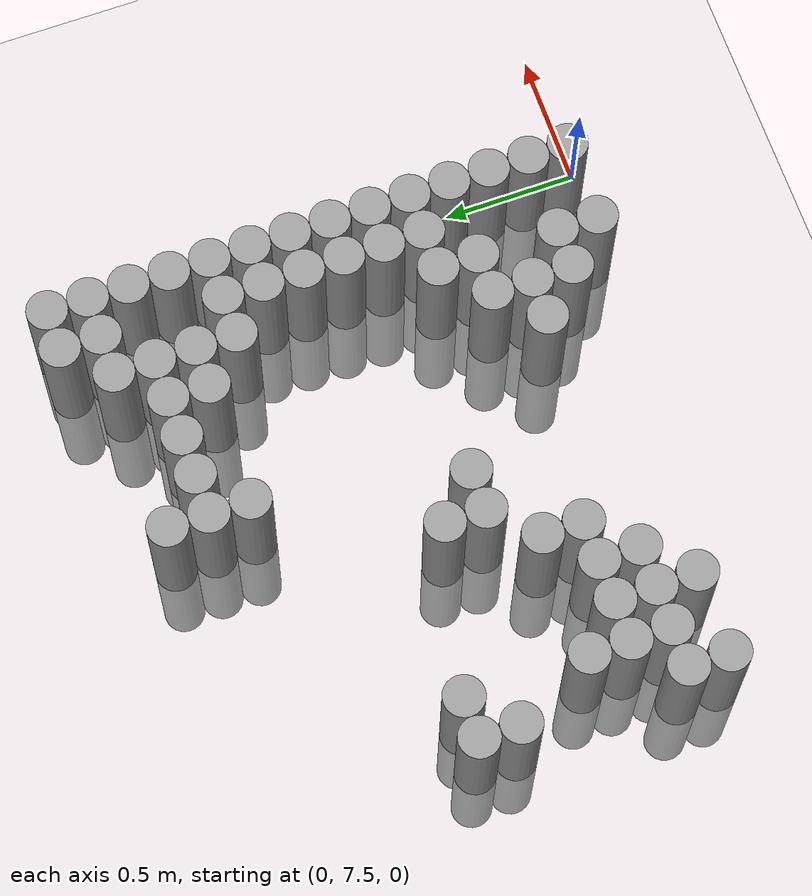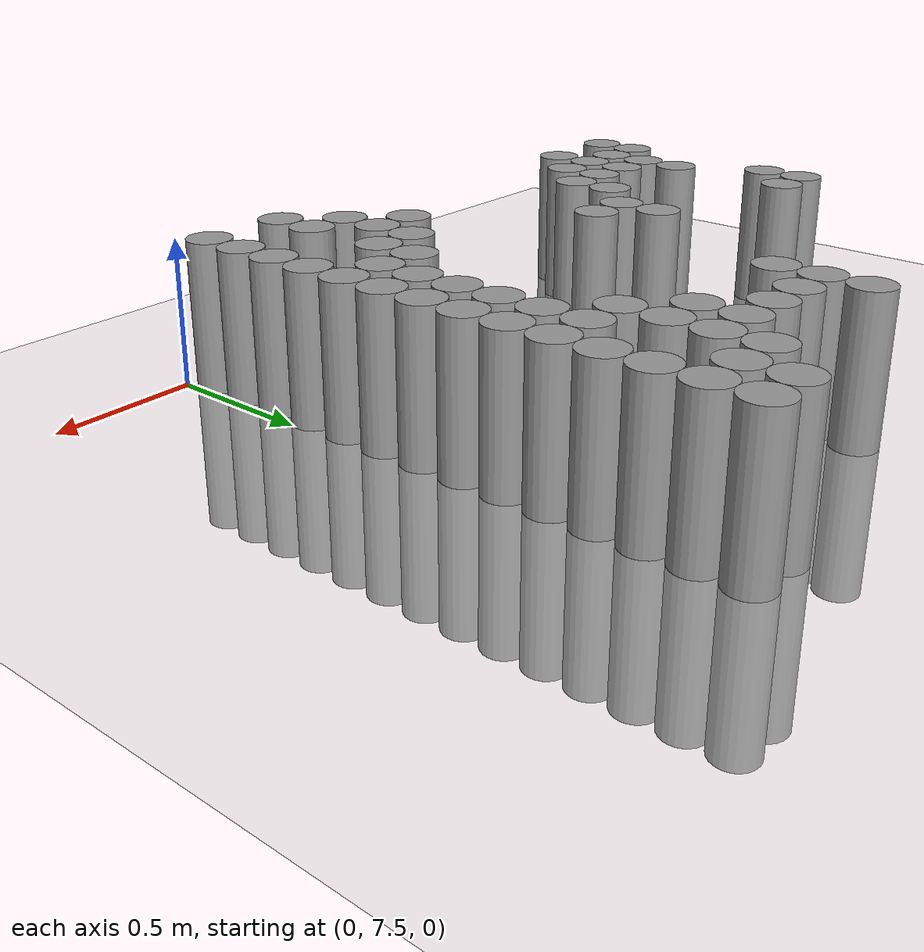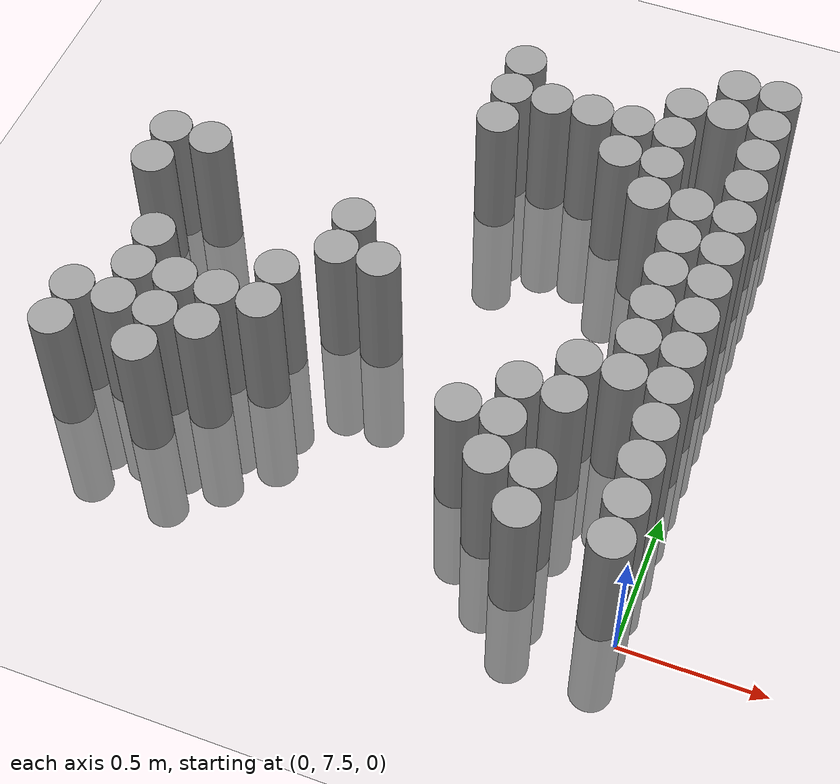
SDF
<sdf version="1.6">
 <world name="default">
  <model name="ground_plane">
   <static>1</static>
   <static>1</static>
   <link name="link">
    <collision name="collision">
     <geometry><plane><normal>0 0 1</normal><size>100 100</size></plane></geometry>
     <surface><friction><ode><mu>100</mu><mu2>50</mu2></ode></friction></surface>
    </collision>
    <visual name="visual">
     <cast_shadows>0</cast_shadows>
     <geometry><plane><normal>0 0 1</normal><size>100 100</size></plane></geometry>
     <material>
      <script><uri>file://media/materials/scripts/gazebo.material</uri><name>Gazebo/Grey</name></script>
     </material>
    </visual>
   </link>
  </model>
  <model name="unit_cylinder_177">
   <static>1</static>
   <pose>-2.025000 7.725000 0.000000 0.000000 0.000000 0.000000</pose>
   <link name="link">
    <inertial>
     <mass>1</mass>
     <inertia><ixx>0.145833</ixx><ixy>0</ixy><ixz>0</ixz><iyy>0.145833</iyy><iyz>0</iyz><izz>0.125</izz></inertia>
    </inertial>
    <collision name="collision">
     <geometry><cylinder><radius>0.075000</radius><length>1</length></cylinder></geometry>
    </collision>
    <visual name="visual">
     <geometry><cylinder><radius>0.075000</radius><length>1</length></cylinder></geometry>
     <material>
      <script><name>Gazebo/Grey</name><uri>file://media/materials/scripts/gazebo.material</uri></script>
     </material>
    </visual>
   </link>
  </model>
  <model name="unit_cylinder_178">
   <static>1</static>
   <pose>-2.025000 7.875000 0.000000 0.000000 0.000000 0.000000</pose>
   <link name="link">
    <inertial>
     <mass>1</mass>
     <inertia><ixx>0.145833</ixx><ixy>0</ixy><ixz>0</ixz><iyy>0.145833</iyy><iyz>0</iyz><izz>0.125</izz></inertia>
    </inertial>
    <collision name="collision">
     <geometry><cylinder><radius>0.075000</radius><length>1</length></cylinder></geometry>
    </collision>
    <visual name="visual">
     <geometry><cylinder><radius>0.075000</radius><length>1</length></cylinder></geometry>
     <material>
      <script><name>Gazebo/Grey</name><uri>file://media/materials/scripts/gazebo.material</uri></script>
     </material>
    </visual>
   </link>
  </model>
  <model name="unit_cylinder_179">
   <static>1</static>
   <pose>-2.025000 8.475000 0.000000 0.000000 0.000000 0.000000</pose>
   <link name="link">
    <inertial>
     <mass>1</mass>
     <inertia><ixx>0.145833</ixx><ixy>0</ixy><ixz>0</ixz><iyy>0.145833</iyy><iyz>0</iyz><izz>0.125</izz></inertia>
    </inertial>
    <collision name="collision">
     <geometry><cylinder><radius>0.075000</radius><length>1</length></cylinder></geometry>
    </collision>
    <visual name="visual">
     <geometry><cylinder><radius>0.075000</radius><length>1</length></cylinder></geometry>
     <material>
      <script><name>Gazebo/Grey</name><uri>file://media/materials/scripts/gazebo.material</uri></script>
     </material>
    </visual>
   </link>
  </model>
  <model name="unit_cylinder_180">
   <static>1</static>
   <pose>-2.025000 8.625000 0.000000 0.000000 0.000000 0.000000</pose>
   <link name="link">
    <inertial>
     <mass>1</mass>
     <inertia><ixx>0.145833</ixx><ixy>0</ixy><ixz>0</ixz><iyy>0.145833</iyy><iyz>0</iyz><izz>0.125</izz></inertia>
    </inertial>
    <collision name="collision">
     <geometry><cylinder><radius>0.075000</radius><length>1</length></cylinder></geometry>
    </collision>
    <visual name="visual">
     <geometry><cylinder><radius>0.075000</radius><length>1</length></cylinder></geometry>
     <material>
      <script><name>Gazebo/Grey</name><uri>file://media/materials/scripts/gazebo.material</uri></script>
     </material>
    </visual>
   </link>
  </model>
  <model name="unit_cylinder_183">
   <static>1</static>
   <pose>-1.875000 7.875000 0.000000 0.000000 0.000000 0.000000</pose>
   <link name="link">
    <inertial>
     <mass>1</mass>
     <inertia><ixx>0.145833</ixx><ixy>0</ixy><ixz>0</ixz><iyy>0.145833</iyy><iyz>0</iyz><izz>0.125</izz></inertia>
    </inertial>
    <collision name="collision">
     <geometry><cylinder><radius>0.075000</radius><length>1</length></cylinder></geometry>
    </collision>
    <visual name="visual">
     <geometry><cylinder><radius>0.075000</radius><length>1</length></cylinder></geometry>
     <material>
      <script><name>Gazebo/Grey</name><uri>file://media/materials/scripts/gazebo.material</uri></script>
     </material>
    </visual>
   </link>
  </model>
  <model name="unit_cylinder_184">
   <static>1</static>
   <pose>-1.875000 8.025000 0.000000 0.000000 0.000000 0.000000</pose>
   <link name="link">
    <inertial>
     <mass>1</mass>
     <inertia><ixx>0.145833</ixx><ixy>0</ixy><ixz>0</ixz><iyy>0.145833</iyy><iyz>0</iyz><izz>0.125</izz></inertia>
    </inertial>
    <collision name="collision">
     <geometry><cylinder><radius>0.075000</radius><length>1</length></cylinder></geometry>
    </collision>
    <visual name="visual">
     <geometry><cylinder><radius>0.075000</radius><length>1</length></cylinder></geometry>
     <material>
      <script><name>Gazebo/Grey</name><uri>file://media/materials/scripts/gazebo.material</uri></script>
     </material>
    </visual>
   </link>
  </model>
  <model name="unit_cylinder_185">
   <static>1</static>
   <pose>-1.875000 8.175000 0.000000 0.000000 0.000000 0.000000</pose>
   <link name="link">
    <inertial>
     <mass>1</mass>
     <inertia><ixx>0.145833</ixx><ixy>0</ixy><ixz>0</ixz><iyy>0.145833</iyy><iyz>0</iyz><izz>0.125</izz></inertia>
    </inertial>
    <collision name="collision">
     <geometry><cylinder><radius>0.075000</radius><length>1</length></cylinder></geometry>
    </collision>
    <visual name="visual">
     <geometry><cylinder><radius>0.075000</radius><length>1</length></cylinder></geometry>
     <material>
      <script><name>Gazebo/Grey</name><uri>file://media/materials/scripts/gazebo.material</uri></script>
     </material>
    </visual>
   </link>
  </model>
  <model name="unit_cylinder_186">
   <static>1</static>
   <pose>-1.875000 8.625000 0.000000 0.000000 0.000000 0.000000</pose>
   <link name="link">
    <inertial>
     <mass>1</mass>
     <inertia><ixx>0.145833</ixx><ixy>0</ixy><ixz>0</ixz><iyy>0.145833</iyy><iyz>0</iyz><izz>0.125</izz></inertia>
    </inertial>
    <collision name="collision">
     <geometry><cylinder><radius>0.075000</radius><length>1</length></cylinder></geometry>
    </collision>
    <visual name="visual">
     <geometry><cylinder><radius>0.075000</radius><length>1</length></cylinder></geometry>
     <material>
      <script><name>Gazebo/Grey</name><uri>file://media/materials/scripts/gazebo.material</uri></script>
     </material>
    </visual>
   </link>
  </model>
  <model name="unit_cylinder_195">
   <static>1</static>
   <pose>-1.725000 7.725000 0.000000 0.000000 0.000000 0.000000</pose>
   <link name="link">
    <inertial>
     <mass>1</mass>
     <inertia><ixx>0.145833</ixx><ixy>0</ixy><ixz>0</ixz><iyy>0.145833</iyy><iyz>0</iyz><izz>0.125</izz></inertia>
    </inertial>
    <collision name="collision">
     <geometry><cylinder><radius>0.075000</radius><length>1</length></cylinder></geometry>
    </collision>
    <visual name="visual">
     <geometry><cylinder><radius>0.075000</radius><length>1</length></cylinder></geometry>
     <material>
      <script><name>Gazebo/Grey</name><uri>file://media/materials/scripts/gazebo.material</uri></script>
     </material>
    </visual>
   </link>
  </model>
  <model name="unit_cylinder_196">
   <static>1</static>
   <pose>-1.725000 7.875000 0.000000 0.000000 0.000000 0.000000</pose>
   <link name="link">
    <inertial>
     <mass>1</mass>
     <inertia><ixx>0.145833</ixx><ixy>0</ixy><ixz>0</ixz><iyy>0.145833</iyy><iyz>0</iyz><izz>0.125</izz></inertia>
    </inertial>
    <collision name="collision">
     <geometry><cylinder><radius>0.075000</radius><length>1</length></cylinder></geometry>
    </collision>
    <visual name="visual">
     <geometry><cylinder><radius>0.075000</radius><length>1</length></cylinder></geometry>
     <material>
      <script><name>Gazebo/Grey</name><uri>file://media/materials/scripts/gazebo.material</uri></script>
     </material>
    </visual>
   </link>
  </model>
  <model name="unit_cylinder_197">
   <static>1</static>
   <pose>-1.725000 8.025000 0.000000 0.000000 0.000000 0.000000</pose>
   <link name="link">
    <inertial>
     <mass>1</mass>
     <inertia><ixx>0.145833</ixx><ixy>0</ixy><ixz>0</ixz><iyy>0.145833</iyy><iyz>0</iyz><izz>0.125</izz></inertia>
    </inertial>
    <collision name="collision">
     <geometry><cylinder><radius>0.075000</radius><length>1</length></cylinder></geometry>
    </collision>
    <visual name="visual">
     <geometry><cylinder><radius>0.075000</radius><length>1</length></cylinder></geometry>
     <material>
      <script><name>Gazebo/Grey</name><uri>file://media/materials/scripts/gazebo.material</uri></script>
     </material>
    </visual>
   </link>
  </model>
  <model name="unit_cylinder_204">
   <static>1</static>
   <pose>-1.575000 7.875000 0.000000 0.000000 0.000000 0.000000</pose>
   <link name="link">
    <inertial>
     <mass>1</mass>
     <inertia><ixx>0.145833</ixx><ixy>0</ixy><ixz>0</ixz><iyy>0.145833</iyy><iyz>0</iyz><izz>0.125</izz></inertia>
    </inertial>
    <collision name="collision">
     <geometry><cylinder><radius>0.075000</radius><length>1</length></cylinder></geometry>
    </collision>
    <visual name="visual">
     <geometry><cylinder><radius>0.075000</radius><length>1</length></cylinder></geometry>
     <material>
      <script><name>Gazebo/Grey</name><uri>file://media/materials/scripts/gazebo.material</uri></script>
     </material>
    </visual>
   </link>
  </model>
  <model name="unit_cylinder_205">
   <static>1</static>
   <pose>-1.575000 8.025000 0.000000 0.000000 0.000000 0.000000</pose>
   <link name="link">
    <inertial>
     <mass>1</mass>
     <inertia><ixx>0.145833</ixx><ixy>0</ixy><ixz>0</ixz><iyy>0.145833</iyy><iyz>0</iyz><izz>0.125</izz></inertia>
    </inertial>
    <collision name="collision">
     <geometry><cylinder><radius>0.075000</radius><length>1</length></cylinder></geometry>
    </collision>
    <visual name="visual">
     <geometry><cylinder><radius>0.075000</radius><length>1</length></cylinder></geometry>
     <material>
      <script><name>Gazebo/Grey</name><uri>file://media/materials/scripts/gazebo.material</uri></script>
     </material>
    </visual>
   </link>
  </model>
  <model name="unit_cylinder_208">
   <static>1</static>
   <pose>-1.425000 8.025000 0.000000 0.000000 0.000000 0.000000</pose>
   <link name="link">
    <inertial>
     <mass>1</mass>
     <inertia><ixx>0.145833</ixx><ixy>0</ixy><ixz>0</ixz><iyy>0.145833</iyy><iyz>0</iyz><izz>0.125</izz></inertia>
    </inertial>
    <collision name="collision">
     <geometry><cylinder><radius>0.075000</radius><length>1</length></cylinder></geometry>
    </collision>
    <visual name="visual">
     <geometry><cylinder><radius>0.075000</radius><length>1</length></cylinder></geometry>
     <material>
      <script><name>Gazebo/Grey</name><uri>file://media/materials/scripts/gazebo.material</uri></script>
     </material>
    </visual>
   </link>
  </model>
  <model name="unit_cylinder_209">
   <static>1</static>
   <pose>-1.425000 8.175000 0.000000 0.000000 0.000000 0.000000</pose>
   <link name="link">
    <inertial>
     <mass>1</mass>
     <inertia><ixx>0.145833</ixx><ixy>0</ixy><ixz>0</ixz><iyy>0.145833</iyy><iyz>0</iyz><izz>0.125</izz></inertia>
    </inertial>
    <collision name="collision">
     <geometry><cylinder><radius>0.075000</radius><length>1</length></cylinder></geometry>
    </collision>
    <visual name="visual">
     <geometry><cylinder><radius>0.075000</radius><length>1</length></cylinder></geometry>
     <material>
      <script><name>Gazebo/Grey</name><uri>file://media/materials/scripts/gazebo.material</uri></script>
     </material>
    </visual>
   </link>
  </model>
  <model name="unit_cylinder_211">
   <static>1</static>
   <pose>-1.275000 8.325000 0.000000 0.000000 0.000000 0.000000</pose>
   <link name="link">
    <inertial>
     <mass>1</mass>
     <inertia><ixx>0.145833</ixx><ixy>0</ixy><ixz>0</ixz><iyy>0.145833</iyy><iyz>0</iyz><izz>0.125</izz></inertia>
    </inertial>
    <collision name="collision">
     <geometry><cylinder><radius>0.075000</radius><length>1</length></cylinder></geometry>
    </collision>
    <visual name="visual">
     <geometry><cylinder><radius>0.075000</radius><length>1</length></cylinder></geometry>
     <material>
      <script><name>Gazebo/Grey</name><uri>file://media/materials/scripts/gazebo.material</uri></script>
     </material>
    </visual>
   </link>
  </model>
  <model name="unit_cylinder_212">
   <static>1</static>
   <pose>-1.275000 8.475000 0.000000 0.000000 0.000000 0.000000</pose>
   <link name="link">
    <inertial>
     <mass>1</mass>
     <inertia><ixx>0.145833</ixx><ixy>0</ixy><ixz>0</ixz><iyy>0.145833</iyy><iyz>0</iyz><izz>0.125</izz></inertia>
    </inertial>
    <collision name="collision">
     <geometry><cylinder><radius>0.075000</radius><length>1</length></cylinder></geometry>
    </collision>
    <visual name="visual">
     <geometry><cylinder><radius>0.075000</radius><length>1</length></cylinder></geometry>
     <material>
      <script><name>Gazebo/Grey</name><uri>file://media/materials/scripts/gazebo.material</uri></script>
     </material>
    </visual>
   </link>
  </model>
  <model name="unit_cylinder_214">
   <static>1</static>
   <pose>-1.125000 8.325000 0.000000 0.000000 0.000000 0.000000</pose>
   <link name="link">
    <inertial>
     <mass>1</mass>
     <inertia><ixx>0.145833</ixx><ixy>0</ixy><ixz>0</ixz><iyy>0.145833</iyy><iyz>0</iyz><izz>0.125</izz></inertia>
    </inertial>
    <collision name="collision">
     <geometry><cylinder><radius>0.075000</radius><length>1</length></cylinder></geometry>
    </collision>
    <visual name="visual">
     <geometry><cylinder><radius>0.075000</radius><length>1</length></cylinder></geometry>
     <material>
      <script><name>Gazebo/Grey</name><uri>file://media/materials/scripts/gazebo.material</uri></script>
     </material>
    </visual>
   </link>
  </model>
  <model name="unit_cylinder_217">
   <static>1</static>
   <pose>-0.975000 9.075000 0.000000 0.000000 0.000000 0.000000</pose>
   <link name="link">
    <inertial>
     <mass>1</mass>
     <inertia><ixx>0.145833</ixx><ixy>0</ixy><ixz>0</ixz><iyy>0.145833</iyy><iyz>0</iyz><izz>0.125</izz></inertia>
    </inertial>
    <collision name="collision">
     <geometry><cylinder><radius>0.075000</radius><length>1</length></cylinder></geometry>
    </collision>
    <visual name="visual">
     <geometry><cylinder><radius>0.075000</radius><length>1</length></cylinder></geometry>
     <material>
      <script><name>Gazebo/Grey</name><uri>file://media/materials/scripts/gazebo.material</uri></script>
     </material>
    </visual>
   </link>
  </model>
  <model name="unit_cylinder_218">
   <static>1</static>
   <pose>-0.975000 9.225000 0.000000 0.000000 0.000000 0.000000</pose>
   <link name="link">
    <inertial>
     <mass>1</mass>
     <inertia><ixx>0.145833</ixx><ixy>0</ixy><ixz>0</ixz><iyy>0.145833</iyy><iyz>0</iyz><izz>0.125</izz></inertia>
    </inertial>
    <collision name="collision">
     <geometry><cylinder><radius>0.075000</radius><length>1</length></cylinder></geometry>
    </collision>
    <visual name="visual">
     <geometry><cylinder><radius>0.075000</radius><length>1</length></cylinder></geometry>
     <material>
      <script><name>Gazebo/Grey</name><uri>file://media/materials/scripts/gazebo.material</uri></script>
     </material>
    </visual>
   </link>
  </model>
  <model name="unit_cylinder_219">
   <static>1</static>
   <pose>-0.975000 9.375000 0.000000 0.000000 0.000000 0.000000</pose>
   <link name="link">
    <inertial>
     <mass>1</mass>
     <inertia><ixx>0.145833</ixx><ixy>0</ixy><ixz>0</ixz><iyy>0.145833</iyy><iyz>0</iyz><izz>0.125</izz></inertia>
    </inertial>
    <collision name="collision">
     <geometry><cylinder><radius>0.075000</radius><length>1</length></cylinder></geometry>
    </collision>
    <visual name="visual">
     <geometry><cylinder><radius>0.075000</radius><length>1</length></cylinder></geometry>
     <material>
      <script><name>Gazebo/Grey</name><uri>file://media/materials/scripts/gazebo.material</uri></script>
     </material>
    </visual>
   </link>
  </model>
  <model name="unit_cylinder_220">
   <static>1</static>
   <pose>-0.825000 9.225000 0.000000 0.000000 0.000000 0.000000</pose>
   <link name="link">
    <inertial>
     <mass>1</mass>
     <inertia><ixx>0.145833</ixx><ixy>0</ixy><ixz>0</ixz><iyy>0.145833</iyy><iyz>0</iyz><izz>0.125</izz></inertia>
    </inertial>
    <collision name="collision">
     <geometry><cylinder><radius>0.075000</radius><length>1</length></cylinder></geometry>
    </collision>
    <visual name="visual">
     <geometry><cylinder><radius>0.075000</radius><length>1</length></cylinder></geometry>
     <material>
      <script><name>Gazebo/Grey</name><uri>file://media/materials/scripts/gazebo.material</uri></script>
     </material>
    </visual>
   </link>
  </model>
  <model name="unit_cylinder_221">
   <static>1</static>
   <pose>-0.675000 7.875000 0.000000 0.000000 0.000000 0.000000</pose>
   <link name="link">
    <inertial>
     <mass>1</mass>
     <inertia><ixx>0.145833</ixx><ixy>0</ixy><ixz>0</ixz><iyy>0.145833</iyy><iyz>0</iyz><izz>0.125</izz></inertia>
    </inertial>
    <collision name="collision">
     <geometry><cylinder><radius>0.075000</radius><length>1</length></cylinder></geometry>
    </collision>
    <visual name="visual">
     <geometry><cylinder><radius>0.075000</radius><length>1</length></cylinder></geometry>
     <material>
      <script><name>Gazebo/Grey</name><uri>file://media/materials/scripts/gazebo.material</uri></script>
     </material>
    </visual>
   </link>
  </model>
  <model name="unit_cylinder_222">
   <static>1</static>
   <pose>-0.675000 9.225000 0.000000 0.000000 0.000000 0.000000</pose>
   <link name="link">
    <inertial>
     <mass>1</mass>
     <inertia><ixx>0.145833</ixx><ixy>0</ixy><ixz>0</ixz><iyy>0.145833</iyy><iyz>0</iyz><izz>0.125</izz></inertia>
    </inertial>
    <collision name="collision">
     <geometry><cylinder><radius>0.075000</radius><length>1</length></cylinder></geometry>
    </collision>
    <visual name="visual">
     <geometry><cylinder><radius>0.075000</radius><length>1</length></cylinder></geometry>
     <material>
      <script><name>Gazebo/Grey</name><uri>file://media/materials/scripts/gazebo.material</uri></script>
     </material>
    </visual>
   </link>
  </model>
  <model name="unit_cylinder_227">
   <static>1</static>
   <pose>-0.525000 7.725000 0.000000 0.000000 0.000000 0.000000</pose>
   <link name="link">
    <inertial>
     <mass>1</mass>
     <inertia><ixx>0.145833</ixx><ixy>0</ixy><ixz>0</ixz><iyy>0.145833</iyy><iyz>0</iyz><izz>0.125</izz></inertia>
    </inertial>
    <collision name="collision">
     <geometry><cylinder><radius>0.075000</radius><length>1</length></cylinder></geometry>
    </collision>
    <visual name="visual">
     <geometry><cylinder><radius>0.075000</radius><length>1</length></cylinder></geometry>
     <material>
      <script><name>Gazebo/Grey</name><uri>file://media/materials/scripts/gazebo.material</uri></script>
     </material>
    </visual>
   </link>
  </model>
  <model name="unit_cylinder_228">
   <static>1</static>
   <pose>-0.525000 7.875000 0.000000 0.000000 0.000000 0.000000</pose>
   <link name="link">
    <inertial>
     <mass>1</mass>
     <inertia><ixx>0.145833</ixx><ixy>0</ixy><ixz>0</ixz><iyy>0.145833</iyy><iyz>0</iyz><izz>0.125</izz></inertia>
    </inertial>
    <collision name="collision">
     <geometry><cylinder><radius>0.075000</radius><length>1</length></cylinder></geometry>
    </collision>
    <visual name="visual">
     <geometry><cylinder><radius>0.075000</radius><length>1</length></cylinder></geometry>
     <material>
      <script><name>Gazebo/Grey</name><uri>file://media/materials/scripts/gazebo.material</uri></script>
     </material>
    </visual>
   </link>
  </model>
  <model name="unit_cylinder_229">
   <static>1</static>
   <pose>-0.525000 8.025000 0.000000 0.000000 0.000000 0.000000</pose>
   <link name="link">
    <inertial>
     <mass>1</mass>
     <inertia><ixx>0.145833</ixx><ixy>0</ixy><ixz>0</ixz><iyy>0.145833</iyy><iyz>0</iyz><izz>0.125</izz></inertia>
    </inertial>
    <collision name="collision">
     <geometry><cylinder><radius>0.075000</radius><length>1</length></cylinder></geometry>
    </collision>
    <visual name="visual">
     <geometry><cylinder><radius>0.075000</radius><length>1</length></cylinder></geometry>
     <material>
      <script><name>Gazebo/Grey</name><uri>file://media/materials/scripts/gazebo.material</uri></script>
     </material>
    </visual>
   </link>
  </model>
  <model name="unit_cylinder_230">
   <static>1</static>
   <pose>-0.525000 9.075000 0.000000 0.000000 0.000000 0.000000</pose>
   <link name="link">
    <inertial>
     <mass>1</mass>
     <inertia><ixx>0.145833</ixx><ixy>0</ixy><ixz>0</ixz><iyy>0.145833</iyy><iyz>0</iyz><izz>0.125</izz></inertia>
    </inertial>
    <collision name="collision">
     <geometry><cylinder><radius>0.075000</radius><length>1</length></cylinder></geometry>
    </collision>
    <visual name="visual">
     <geometry><cylinder><radius>0.075000</radius><length>1</length></cylinder></geometry>
     <material>
      <script><name>Gazebo/Grey</name><uri>file://media/materials/scripts/gazebo.material</uri></script>
     </material>
    </visual>
   </link>
  </model>
  <model name="unit_cylinder_231">
   <static>1</static>
   <pose>-0.525000 9.225000 0.000000 0.000000 0.000000 0.000000</pose>
   <link name="link">
    <inertial>
     <mass>1</mass>
     <inertia><ixx>0.145833</ixx><ixy>0</ixy><ixz>0</ixz><iyy>0.145833</iyy><iyz>0</iyz><izz>0.125</izz></inertia>
    </inertial>
    <collision name="collision">
     <geometry><cylinder><radius>0.075000</radius><length>1</length></cylinder></geometry>
    </collision>
    <visual name="visual">
     <geometry><cylinder><radius>0.075000</radius><length>1</length></cylinder></geometry>
     <material>
      <script><name>Gazebo/Grey</name><uri>file://media/materials/scripts/gazebo.material</uri></script>
     </material>
    </visual>
   </link>
  </model>
  <model name="unit_cylinder_240">
   <static>1</static>
   <pose>-0.375000 7.575000 0.000000 0.000000 0.000000 0.000000</pose>
   <link name="link">
    <inertial>
     <mass>1</mass>
     <inertia><ixx>0.145833</ixx><ixy>0</ixy><ixz>0</ixz><iyy>0.145833</iyy><iyz>0</iyz><izz>0.125</izz></inertia>
    </inertial>
    <collision name="collision">
     <geometry><cylinder><radius>0.075000</radius><length>1</length></cylinder></geometry>
    </collision>
    <visual name="visual">
     <geometry><cylinder><radius>0.075000</radius><length>1</length></cylinder></geometry>
     <material>
      <script><name>Gazebo/Grey</name><uri>file://media/materials/scripts/gazebo.material</uri></script>
     </material>
    </visual>
   </link>
  </model>
  <model name="unit_cylinder_241">
   <static>1</static>
   <pose>-0.375000 7.725000 0.000000 0.000000 0.000000 0.000000</pose>
   <link name="link">
    <inertial>
     <mass>1</mass>
     <inertia><ixx>0.145833</ixx><ixy>0</ixy><ixz>0</ixz><iyy>0.145833</iyy><iyz>0</iyz><izz>0.125</izz></inertia>
    </inertial>
    <collision name="collision">
     <geometry><cylinder><radius>0.075000</radius><length>1</length></cylinder></geometry>
    </collision>
    <visual name="visual">
     <geometry><cylinder><radius>0.075000</radius><length>1</length></cylinder></geometry>
     <material>
      <script><name>Gazebo/Grey</name><uri>file://media/materials/scripts/gazebo.material</uri></script>
     </material>
    </visual>
   </link>
  </model>
  <model name="unit_cylinder_242">
   <static>1</static>
   <pose>-0.375000 8.025000 0.000000 0.000000 0.000000 0.000000</pose>
   <link name="link">
    <inertial>
     <mass>1</mass>
     <inertia><ixx>0.145833</ixx><ixy>0</ixy><ixz>0</ixz><iyy>0.145833</iyy><iyz>0</iyz><izz>0.125</izz></inertia>
    </inertial>
    <collision name="collision">
     <geometry><cylinder><radius>0.075000</radius><length>1</length></cylinder></geometry>
    </collision>
    <visual name="visual">
     <geometry><cylinder><radius>0.075000</radius><length>1</length></cylinder></geometry>
     <material>
      <script><name>Gazebo/Grey</name><uri>file://media/materials/scripts/gazebo.material</uri></script>
     </material>
    </visual>
   </link>
  </model>
  <model name="unit_cylinder_243">
   <static>1</static>
   <pose>-0.375000 8.175000 0.000000 0.000000 0.000000 0.000000</pose>
   <link name="link">
    <inertial>
     <mass>1</mass>
     <inertia><ixx>0.145833</ixx><ixy>0</ixy><ixz>0</ixz><iyy>0.145833</iyy><iyz>0</iyz><izz>0.125</izz></inertia>
    </inertial>
    <collision name="collision">
     <geometry><cylinder><radius>0.075000</radius><length>1</length></cylinder></geometry>
    </collision>
    <visual name="visual">
     <geometry><cylinder><radius>0.075000</radius><length>1</length></cylinder></geometry>
     <material>
      <script><name>Gazebo/Grey</name><uri>file://media/materials/scripts/gazebo.material</uri></script>
     </material>
    </visual>
   </link>
  </model>
  <model name="unit_cylinder_244">
   <static>1</static>
   <pose>-0.375000 8.925000 0.000000 0.000000 0.000000 0.000000</pose>
   <link name="link">
    <inertial>
     <mass>1</mass>
     <inertia><ixx>0.145833</ixx><ixy>0</ixy><ixz>0</ixz><iyy>0.145833</iyy><iyz>0</iyz><izz>0.125</izz></inertia>
    </inertial>
    <collision name="collision">
     <geometry><cylinder><radius>0.075000</radius><length>1</length></cylinder></geometry>
    </collision>
    <visual name="visual">
     <geometry><cylinder><radius>0.075000</radius><length>1</length></cylinder></geometry>
     <material>
      <script><name>Gazebo/Grey</name><uri>file://media/materials/scripts/gazebo.material</uri></script>
     </material>
    </visual>
   </link>
  </model>
  <model name="unit_cylinder_245">
   <static>1</static>
   <pose>-0.375000 9.075000 0.000000 0.000000 0.000000 0.000000</pose>
   <link name="link">
    <inertial>
     <mass>1</mass>
     <inertia><ixx>0.145833</ixx><ixy>0</ixy><ixz>0</ixz><iyy>0.145833</iyy><iyz>0</iyz><izz>0.125</izz></inertia>
    </inertial>
    <collision name="collision">
     <geometry><cylinder><radius>0.075000</radius><length>1</length></cylinder></geometry>
    </collision>
    <visual name="visual">
     <geometry><cylinder><radius>0.075000</radius><length>1</length></cylinder></geometry>
     <material>
      <script><name>Gazebo/Grey</name><uri>file://media/materials/scripts/gazebo.material</uri></script>
     </material>
    </visual>
   </link>
  </model>
  <model name="unit_cylinder_246">
   <static>1</static>
   <pose>-0.375000 9.225000 0.000000 0.000000 0.000000 0.000000</pose>
   <link name="link">
    <inertial>
     <mass>1</mass>
     <inertia><ixx>0.145833</ixx><ixy>0</ixy><ixz>0</ixz><iyy>0.145833</iyy><iyz>0</iyz><izz>0.125</izz></inertia>
    </inertial>
    <collision name="collision">
     <geometry><cylinder><radius>0.075000</radius><length>1</length></cylinder></geometry>
    </collision>
    <visual name="visual">
     <geometry><cylinder><radius>0.075000</radius><length>1</length></cylinder></geometry>
     <material>
      <script><name>Gazebo/Grey</name><uri>file://media/materials/scripts/gazebo.material</uri></script>
     </material>
    </visual>
   </link>
  </model>
  <model name="unit_cylinder_247">
   <static>1</static>
   <pose>-0.375000 9.375000 0.000000 0.000000 0.000000 0.000000</pose>
   <link name="link">
    <inertial>
     <mass>1</mass>
     <inertia><ixx>0.145833</ixx><ixy>0</ixy><ixz>0</ixz><iyy>0.145833</iyy><iyz>0</iyz><izz>0.125</izz></inertia>
    </inertial>
    <collision name="collision">
     <geometry><cylinder><radius>0.075000</radius><length>1</length></cylinder></geometry>
    </collision>
    <visual name="visual">
     <geometry><cylinder><radius>0.075000</radius><length>1</length></cylinder></geometry>
     <material>
      <script><name>Gazebo/Grey</name><uri>file://media/materials/scripts/gazebo.material</uri></script>
     </material>
    </visual>
   </link>
  </model>
  <model name="unit_cylinder_257">
   <static>1</static>
   <pose>-0.225000 8.175000 0.000000 0.000000 0.000000 0.000000</pose>
   <link name="link">
    <inertial>
     <mass>1</mass>
     <inertia><ixx>0.145833</ixx><ixy>0</ixy><ixz>0</ixz><iyy>0.145833</iyy><iyz>0</iyz><izz>0.125</izz></inertia>
    </inertial>
    <collision name="collision">
     <geometry><cylinder><radius>0.075000</radius><length>1</length></cylinder></geometry>
    </collision>
    <visual name="visual">
     <geometry><cylinder><radius>0.075000</radius><length>1</length></cylinder></geometry>
     <material>
      <script><name>Gazebo/Grey</name><uri>file://media/materials/scripts/gazebo.material</uri></script>
     </material>
    </visual>
   </link>
  </model>
  <model name="unit_cylinder_258">
   <static>1</static>
   <pose>-0.225000 8.325000 0.000000 0.000000 0.000000 0.000000</pose>
   <link name="link">
    <inertial>
     <mass>1</mass>
     <inertia><ixx>0.145833</ixx><ixy>0</ixy><ixz>0</ixz><iyy>0.145833</iyy><iyz>0</iyz><izz>0.125</izz></inertia>
    </inertial>
    <collision name="collision">
     <geometry><cylinder><radius>0.075000</radius><length>1</length></cylinder></geometry>
    </collision>
    <visual name="visual">
     <geometry><cylinder><radius>0.075000</radius><length>1</length></cylinder></geometry>
     <material>
      <script><name>Gazebo/Grey</name><uri>file://media/materials/scripts/gazebo.material</uri></script>
     </material>
    </visual>
   </link>
  </model>
  <model name="unit_cylinder_259">
   <static>1</static>
   <pose>-0.225000 8.475000 0.000000 0.000000 0.000000 0.000000</pose>
   <link name="link">
    <inertial>
     <mass>1</mass>
     <inertia><ixx>0.145833</ixx><ixy>0</ixy><ixz>0</ixz><iyy>0.145833</iyy><iyz>0</iyz><izz>0.125</izz></inertia>
    </inertial>
    <collision name="collision">
     <geometry><cylinder><radius>0.075000</radius><length>1</length></cylinder></geometry>
    </collision>
    <visual name="visual">
     <geometry><cylinder><radius>0.075000</radius><length>1</length></cylinder></geometry>
     <material>
      <script><name>Gazebo/Grey</name><uri>file://media/materials/scripts/gazebo.material</uri></script>
     </material>
    </visual>
   </link>
  </model>
  <model name="unit_cylinder_260">
   <static>1</static>
   <pose>-0.225000 8.625000 0.000000 0.000000 0.000000 0.000000</pose>
   <link name="link">
    <inertial>
     <mass>1</mass>
     <inertia><ixx>0.145833</ixx><ixy>0</ixy><ixz>0</ixz><iyy>0.145833</iyy><iyz>0</iyz><izz>0.125</izz></inertia>
    </inertial>
    <collision name="collision">
     <geometry><cylinder><radius>0.075000</radius><length>1</length></cylinder></geometry>
    </collision>
    <visual name="visual">
     <geometry><cylinder><radius>0.075000</radius><length>1</length></cylinder></geometry>
     <material>
      <script><name>Gazebo/Grey</name><uri>file://media/materials/scripts/gazebo.material</uri></script>
     </material>
    </visual>
   </link>
  </model>
  <model name="unit_cylinder_261">
   <static>1</static>
   <pose>-0.225000 8.775000 0.000000 0.000000 0.000000 0.000000</pose>
   <link name="link">
    <inertial>
     <mass>1</mass>
     <inertia><ixx>0.145833</ixx><ixy>0</ixy><ixz>0</ixz><iyy>0.145833</iyy><iyz>0</iyz><izz>0.125</izz></inertia>
    </inertial>
    <collision name="collision">
     <geometry><cylinder><radius>0.075000</radius><length>1</length></cylinder></geometry>
    </collision>
    <visual name="visual">
     <geometry><cylinder><radius>0.075000</radius><length>1</length></cylinder></geometry>
     <material>
      <script><name>Gazebo/Grey</name><uri>file://media/materials/scripts/gazebo.material</uri></script>
     </material>
    </visual>
   </link>
  </model>
  <model name="unit_cylinder_262">
   <static>1</static>
   <pose>-0.225000 8.925000 0.000000 0.000000 0.000000 0.000000</pose>
   <link name="link">
    <inertial>
     <mass>1</mass>
     <inertia><ixx>0.145833</ixx><ixy>0</ixy><ixz>0</ixz><iyy>0.145833</iyy><iyz>0</iyz><izz>0.125</izz></inertia>
    </inertial>
    <collision name="collision">
     <geometry><cylinder><radius>0.075000</radius><length>1</length></cylinder></geometry>
    </collision>
    <visual name="visual">
     <geometry><cylinder><radius>0.075000</radius><length>1</length></cylinder></geometry>
     <material>
      <script><name>Gazebo/Grey</name><uri>file://media/materials/scripts/gazebo.material</uri></script>
     </material>
    </visual>
   </link>
  </model>
  <model name="unit_cylinder_263">
   <static>1</static>
   <pose>-0.225000 9.375000 0.000000 0.000000 0.000000 0.000000</pose>
   <link name="link">
    <inertial>
     <mass>1</mass>
     <inertia><ixx>0.145833</ixx><ixy>0</ixy><ixz>0</ixz><iyy>0.145833</iyy><iyz>0</iyz><izz>0.125</izz></inertia>
    </inertial>
    <collision name="collision">
     <geometry><cylinder><radius>0.075000</radius><length>1</length></cylinder></geometry>
    </collision>
    <visual name="visual">
     <geometry><cylinder><radius>0.075000</radius><length>1</length></cylinder></geometry>
     <material>
      <script><name>Gazebo/Grey</name><uri>file://media/materials/scripts/gazebo.material</uri></script>
     </material>
    </visual>
   </link>
  </model>
  <model name="unit_cylinder_264">
   <static>1</static>
   <pose>-0.225000 9.525000 0.000000 0.000000 0.000000 0.000000</pose>
   <link name="link">
    <inertial>
     <mass>1</mass>
     <inertia><ixx>0.145833</ixx><ixy>0</ixy><ixz>0</ixz><iyy>0.145833</iyy><iyz>0</iyz><izz>0.125</izz></inertia>
    </inertial>
    <collision name="collision">
     <geometry><cylinder><radius>0.075000</radius><length>1</length></cylinder></geometry>
    </collision>
    <visual name="visual">
     <geometry><cylinder><radius>0.075000</radius><length>1</length></cylinder></geometry>
     <material>
      <script><name>Gazebo/Grey</name><uri>file://media/materials/scripts/gazebo.material</uri></script>
     </material>
    </visual>
   </link>
  </model>
  <model name="unit_cylinder_281">
   <static>1</static>
   <pose>-0.075000 7.575000 0.000000 0.000000 0.000000 0.000000</pose>
   <link name="link">
    <inertial>
     <mass>1</mass>
     <inertia><ixx>0.145833</ixx><ixy>0</ixy><ixz>0</ixz><iyy>0.145833</iyy><iyz>0</iyz><izz>0.125</izz></inertia>
    </inertial>
    <collision name="collision">
     <geometry><cylinder><radius>0.075000</radius><length>1</length></cylinder></geometry>
    </collision>
    <visual name="visual">
     <geometry><cylinder><radius>0.075000</radius><length>1</length></cylinder></geometry>
     <material>
      <script><name>Gazebo/Grey</name><uri>file://media/materials/scripts/gazebo.material</uri></script>
     </material>
    </visual>
   </link>
  </model>
  <model name="unit_cylinder_282">
   <static>1</static>
   <pose>-0.075000 7.725000 0.000000 0.000000 0.000000 0.000000</pose>
   <link name="link">
    <inertial>
     <mass>1</mass>
     <inertia><ixx>0.145833</ixx><ixy>0</ixy><ixz>0</ixz><iyy>0.145833</iyy><iyz>0</iyz><izz>0.125</izz></inertia>
    </inertial>
    <collision name="collision">
     <geometry><cylinder><radius>0.075000</radius><length>1</length></cylinder></geometry>
    </collision>
    <visual name="visual">
     <geometry><cylinder><radius>0.075000</radius><length>1</length></cylinder></geometry>
     <material>
      <script><name>Gazebo/Grey</name><uri>file://media/materials/scripts/gazebo.material</uri></script>
     </material>
    </visual>
   </link>
  </model>
  <model name="unit_cylinder_283">
   <static>1</static>
   <pose>-0.075000 7.875000 0.000000 0.000000 0.000000 0.000000</pose>
   <link name="link">
    <inertial>
     <mass>1</mass>
     <inertia><ixx>0.145833</ixx><ixy>0</ixy><ixz>0</ixz><iyy>0.145833</iyy><iyz>0</iyz><izz>0.125</izz></inertia>
    </inertial>
    <collision name="collision">
     <geometry><cylinder><radius>0.075000</radius><length>1</length></cylinder></geometry>
    </collision>
    <visual name="visual">
     <geometry><cylinder><radius>0.075000</radius><length>1</length></cylinder></geometry>
     <material>
      <script><name>Gazebo/Grey</name><uri>file://media/materials/scripts/gazebo.material</uri></script>
     </material>
    </visual>
   </link>
  </model>
  <model name="unit_cylinder_284">
   <static>1</static>
   <pose>-0.075000 8.025000 0.000000 0.000000 0.000000 0.000000</pose>
   <link name="link">
    <inertial>
     <mass>1</mass>
     <inertia><ixx>0.145833</ixx><ixy>0</ixy><ixz>0</ixz><iyy>0.145833</iyy><iyz>0</iyz><izz>0.125</izz></inertia>
    </inertial>
    <collision name="collision">
     <geometry><cylinder><radius>0.075000</radius><length>1</length></cylinder></geometry>
    </collision>
    <visual name="visual">
     <geometry><cylinder><radius>0.075000</radius><length>1</length></cylinder></geometry>
     <material>
      <script><name>Gazebo/Grey</name><uri>file://media/materials/scripts/gazebo.material</uri></script>
     </material>
    </visual>
   </link>
  </model>
  <model name="unit_cylinder_285">
   <static>1</static>
   <pose>-0.075000 8.175000 0.000000 0.000000 0.000000 0.000000</pose>
   <link name="link">
    <inertial>
     <mass>1</mass>
     <inertia><ixx>0.145833</ixx><ixy>0</ixy><ixz>0</ixz><iyy>0.145833</iyy><iyz>0</iyz><izz>0.125</izz></inertia>
    </inertial>
    <collision name="collision">
     <geometry><cylinder><radius>0.075000</radius><length>1</length></cylinder></geometry>
    </collision>
    <visual name="visual">
     <geometry><cylinder><radius>0.075000</radius><length>1</length></cylinder></geometry>
     <material>
      <script><name>Gazebo/Grey</name><uri>file://media/materials/scripts/gazebo.material</uri></script>
     </material>
    </visual>
   </link>
  </model>
  <model name="unit_cylinder_286">
   <static>1</static>
   <pose>-0.075000 8.325000 0.000000 0.000000 0.000000 0.000000</pose>
   <link name="link">
    <inertial>
     <mass>1</mass>
     <inertia><ixx>0.145833</ixx><ixy>0</ixy><ixz>0</ixz><iyy>0.145833</iyy><iyz>0</iyz><izz>0.125</izz></inertia>
    </inertial>
    <collision name="collision">
     <geometry><cylinder><radius>0.075000</radius><length>1</length></cylinder></geometry>
    </collision>
    <visual name="visual">
     <geometry><cylinder><radius>0.075000</radius><length>1</length></cylinder></geometry>
     <material>
      <script><name>Gazebo/Grey</name><uri>file://media/materials/scripts/gazebo.material</uri></script>
     </material>
    </visual>
   </link>
  </model>
  <model name="unit_cylinder_287">
   <static>1</static>
   <pose>-0.075000 8.475000 0.000000 0.000000 0.000000 0.000000</pose>
   <link name="link">
    <inertial>
     <mass>1</mass>
     <inertia><ixx>0.145833</ixx><ixy>0</ixy><ixz>0</ixz><iyy>0.145833</iyy><iyz>0</iyz><izz>0.125</izz></inertia>
    </inertial>
    <collision name="collision">
     <geometry><cylinder><radius>0.075000</radius><length>1</length></cylinder></geometry>
    </collision>
    <visual name="visual">
     <geometry><cylinder><radius>0.075000</radius><length>1</length></cylinder></geometry>
     <material>
      <script><name>Gazebo/Grey</name><uri>file://media/materials/scripts/gazebo.material</uri></script>
     </material>
    </visual>
   </link>
  </model>
  <model name="unit_cylinder_288">
   <static>1</static>
   <pose>-0.075000 8.625000 0.000000 0.000000 0.000000 0.000000</pose>
   <link name="link">
    <inertial>
     <mass>1</mass>
     <inertia><ixx>0.145833</ixx><ixy>0</ixy><ixz>0</ixz><iyy>0.145833</iyy><iyz>0</iyz><izz>0.125</izz></inertia>
    </inertial>
    <collision name="collision">
     <geometry><cylinder><radius>0.075000</radius><length>1</length></cylinder></geometry>
    </collision>
    <visual name="visual">
     <geometry><cylinder><radius>0.075000</radius><length>1</length></cylinder></geometry>
     <material>
      <script><name>Gazebo/Grey</name><uri>file://media/materials/scripts/gazebo.material</uri></script>
     </material>
    </visual>
   </link>
  </model>
  <model name="unit_cylinder_289">
   <static>1</static>
   <pose>-0.075000 8.775000 0.000000 0.000000 0.000000 0.000000</pose>
   <link name="link">
    <inertial>
     <mass>1</mass>
     <inertia><ixx>0.145833</ixx><ixy>0</ixy><ixz>0</ixz><iyy>0.145833</iyy><iyz>0</iyz><izz>0.125</izz></inertia>
    </inertial>
    <collision name="collision">
     <geometry><cylinder><radius>0.075000</radius><length>1</length></cylinder></geometry>
    </collision>
    <visual name="visual">
     <geometry><cylinder><radius>0.075000</radius><length>1</length></cylinder></geometry>
     <material>
      <script><name>Gazebo/Grey</name><uri>file://media/materials/scripts/gazebo.material</uri></script>
     </material>
    </visual>
   </link>
  </model>
  <model name="unit_cylinder_290">
   <static>1</static>
   <pose>-0.075000 8.925000 0.000000 0.000000 0.000000 0.000000</pose>
   <link name="link">
    <inertial>
     <mass>1</mass>
     <inertia><ixx>0.145833</ixx><ixy>0</ixy><ixz>0</ixz><iyy>0.145833</iyy><iyz>0</iyz><izz>0.125</izz></inertia>
    </inertial>
    <collision name="collision">
     <geometry><cylinder><radius>0.075000</radius><length>1</length></cylinder></geometry>
    </collision>
    <visual name="visual">
     <geometry><cylinder><radius>0.075000</radius><length>1</length></cylinder></geometry>
     <material>
      <script><name>Gazebo/Grey</name><uri>file://media/materials/scripts/gazebo.material</uri></script>
     </material>
    </visual>
   </link>
  </model>
  <model name="unit_cylinder_291">
   <static>1</static>
   <pose>-0.075000 9.075000 0.000000 0.000000 0.000000 0.000000</pose>
   <link name="link">
    <inertial>
     <mass>1</mass>
     <inertia><ixx>0.145833</ixx><ixy>0</ixy><ixz>0</ixz><iyy>0.145833</iyy><iyz>0</iyz><izz>0.125</izz></inertia>
    </inertial>
    <collision name="collision">
     <geometry><cylinder><radius>0.075000</radius><length>1</length></cylinder></geometry>
    </collision>
    <visual name="visual">
     <geometry><cylinder><radius>0.075000</radius><length>1</length></cylinder></geometry>
     <material>
      <script><name>Gazebo/Grey</name><uri>file://media/materials/scripts/gazebo.material</uri></script>
     </material>
    </visual>
   </link>
  </model>
  <model name="unit_cylinder_292">
   <static>1</static>
   <pose>-0.075000 9.225000 0.000000 0.000000 0.000000 0.000000</pose>
   <link name="link">
    <inertial>
     <mass>1</mass>
     <inertia><ixx>0.145833</ixx><ixy>0</ixy><ixz>0</ixz><iyy>0.145833</iyy><iyz>0</iyz><izz>0.125</izz></inertia>
    </inertial>
    <collision name="collision">
     <geometry><cylinder><radius>0.075000</radius><length>1</length></cylinder></geometry>
    </collision>
    <visual name="visual">
     <geometry><cylinder><radius>0.075000</radius><length>1</length></cylinder></geometry>
     <material>
      <script><name>Gazebo/Grey</name><uri>file://media/materials/scripts/gazebo.material</uri></script>
     </material>
    </visual>
   </link>
  </model>
  <model name="unit_cylinder_293">
   <static>1</static>
   <pose>-0.075000 9.375000 0.000000 0.000000 0.000000 0.000000</pose>
   <link name="link">
    <inertial>
     <mass>1</mass>
     <inertia><ixx>0.145833</ixx><ixy>0</ixy><ixz>0</ixz><iyy>0.145833</iyy><iyz>0</iyz><izz>0.125</izz></inertia>
    </inertial>
    <collision name="collision">
     <geometry><cylinder><radius>0.075000</radius><length>1</length></cylinder></geometry>
    </collision>
    <visual name="visual">
     <geometry><cylinder><radius>0.075000</radius><length>1</length></cylinder></geometry>
     <material>
      <script><name>Gazebo/Grey</name><uri>file://media/materials/scripts/gazebo.material</uri></script>
     </material>
    </visual>
   </link>
  </model>
  <model name="unit_cylinder_294">
   <static>1</static>
   <pose>-0.075000 9.525000 0.000000 0.000000 0.000000 0.000000</pose>
   <link name="link">
    <inertial>
     <mass>1</mass>
     <inertia><ixx>0.145833</ixx><ixy>0</ixy><ixz>0</ixz><iyy>0.145833</iyy><iyz>0</iyz><izz>0.125</izz></inertia>
    </inertial>
    <collision name="collision">
     <geometry><cylinder><radius>0.075000</radius><length>1</length></cylinder></geometry>
    </collision>
    <visual name="visual">
     <geometry><cylinder><radius>0.075000</radius><length>1</length></cylinder></geometry>
     <material>
      <script><name>Gazebo/Grey</name><uri>file://media/materials/scripts/gazebo.material</uri></script>
     </material>
    </visual>
   </link>
  </model>
 </world>
</sdf>
